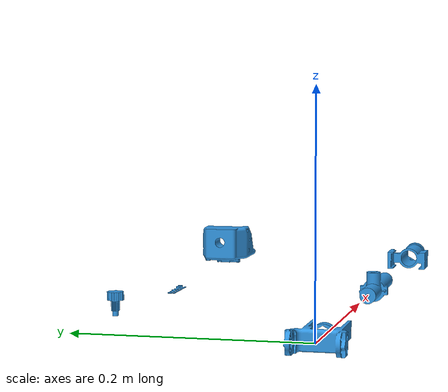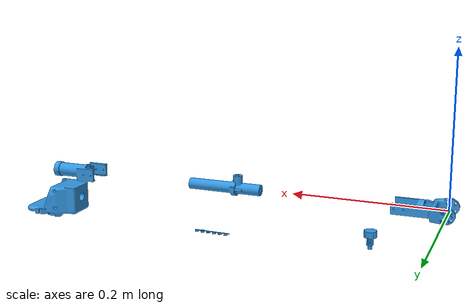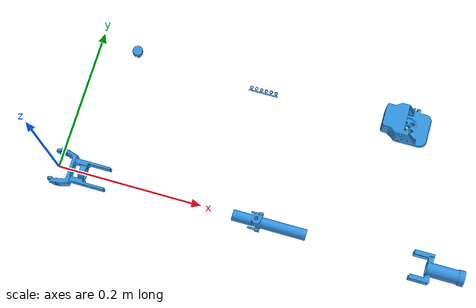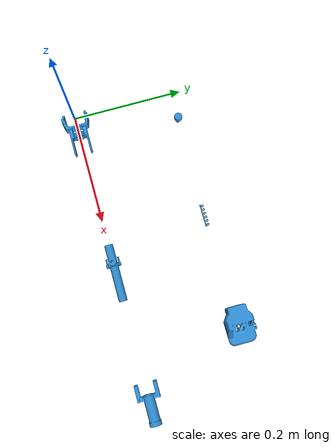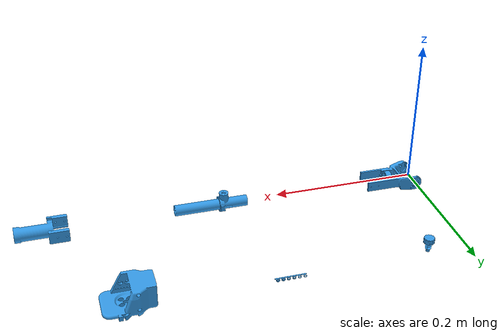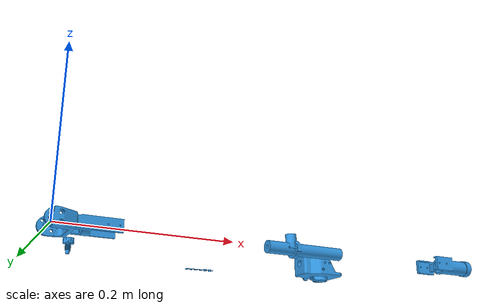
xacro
<?xml version="1.0"?>
<!-- Gallery of individual parts, NOT an assembled end effector. Native files are mm. -->
<robot xmlns:xacro="http://www.ros.org/wiki/xacro" name="ee_parts_gallery">
  <link name="base_link"/>
  <xacro:macro name="part" params="name xyz">
    <link name="${name}">
      <visual><geometry><mesh filename="package://pinchy_description/meshes/ee_v1/${name}.stl" scale="0.001 0.001 0.001"/></geometry>
        <material name="part_blue"><color rgba="0.2 0.6 0.9 1"/></material>
      </visual>
    </link>
    <joint name="${name}_gallery" type="fixed">
      <parent link="base_link"/><child link="${name}"/><origin xyz="${xyz}"/>
    </joint>
  </xacro:macro>
  <xacro:part name="J6_Hub" xyz="0 0 0"/>
  <xacro:part name="J6_Sleeve" xyz="0.22 0 0"/>
  <xacro:part name="J6_FrontCap" xyz="0.44 0 0"/>
  <xacro:part name="J6_Thumbscrew" xyz="0 0.18 0"/>
  <xacro:part name="J6_PreloadShims" xyz="0.22 0.18 0"/>
  <xacro:part name="Wrist_Roll_Follower_SO101_NoClaw" xyz="0.44 0.18 0"/>
</robot>
